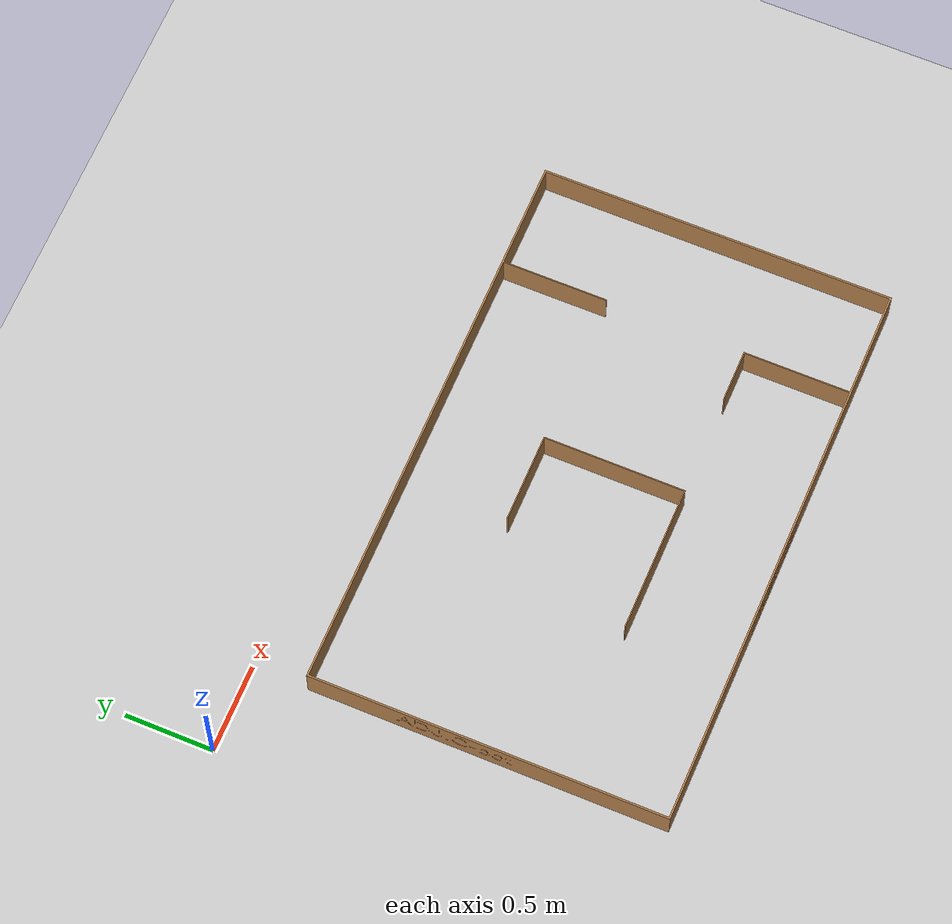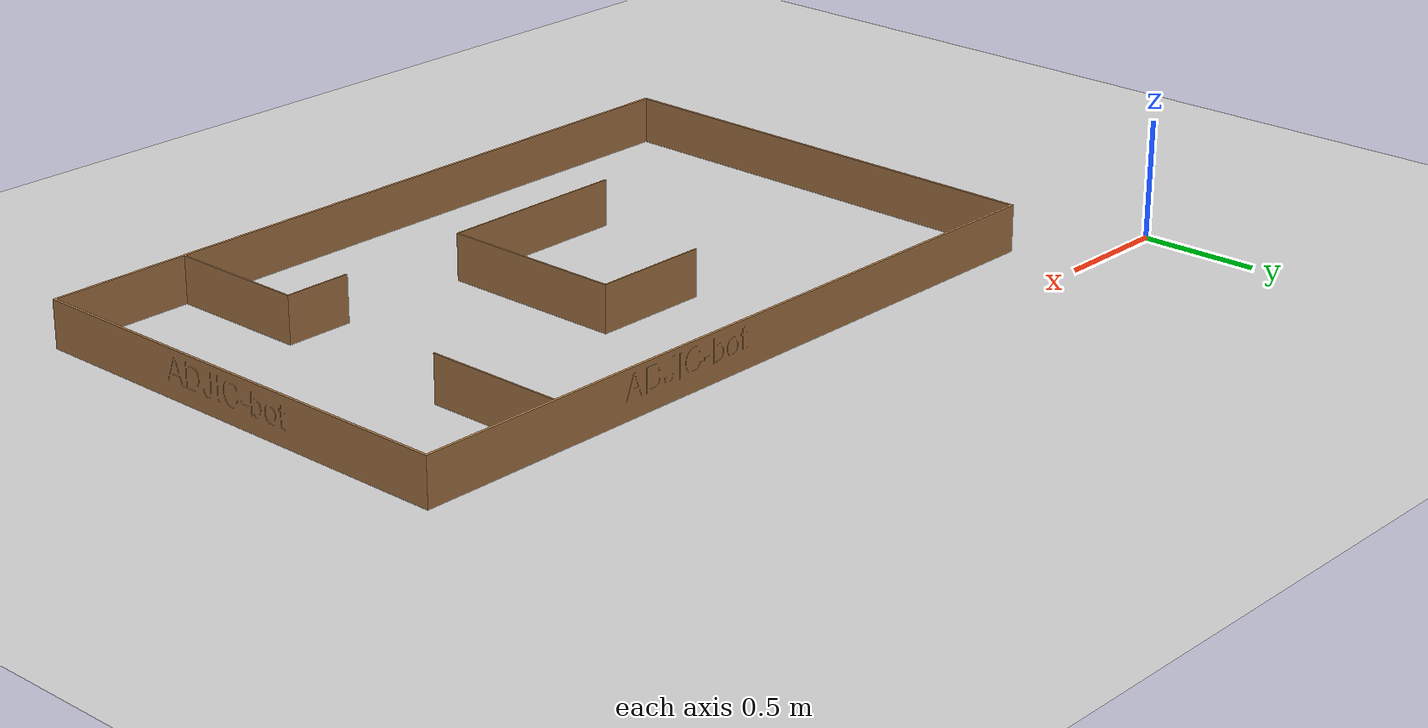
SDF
<sdf version="1.7">
 <world name="default">
  <light name="sun" type="directional">
   <pose>0 0 10 0 -0 0</pose>
   <diffuse>0.8 0.8 0.8 1</diffuse>
   <specular>0.2 0.2 0.2 1</specular>
   <attenuation>
    <range>1000</range>
    <constant>0.9</constant>
    <linear>0.01</linear>
    <quadratic>0.001</quadratic>
   </attenuation>
   <direction>-0.5 0.1 -0.9</direction>
   <spot><inner_angle>0</inner_angle><outer_angle>0</outer_angle><falloff>0</falloff></spot>
  </light>
  <model name="ground_plane">
   <static>1</static>
   <link name="link">
    <collision name="collision">
     <geometry><plane><normal>0 0 1</normal><size>100 100</size></plane></geometry>
     <surface>
      <contact><collide_bitmask>65535</collide_bitmask></contact>
      <friction><ode><mu>100</mu><mu2>50</mu2></ode></friction>
     </surface>
    </collision>
    <visual name="visual">
     <cast_shadows>0</cast_shadows>
     <geometry><plane><normal>0 0 1</normal><size>100 100</size></plane></geometry>
     <material>
      <script><uri>file://media/materials/scripts/gazebo.material</uri><name>Gazebo/Grey</name></script>
     </material>
    </visual>
   </link>
  </model>
  <gravity>0 0 -9.8</gravity>
  <magnetic_field>6e-06 2.3e-05 -4.2e-05</magnetic_field>
  <atmosphere type="adiabatic"/>
  <physics type="ode">
   <max_step_size>0.001</max_step_size>
   <real_time_factor>1</real_time_factor>
   <real_time_update_rate>1000</real_time_update_rate>
  </physics>
  <scene><ambient>0.4 0.4 0.4 1</ambient><background>0.7 0.7 0.7 1</background><shadows>1</shadows></scene>
  <spherical_coordinates>
   <surface_model>EARTH_WGS84</surface_model>
   <latitude_deg>0</latitude_deg>
   <longitude_deg>0</longitude_deg>
   <elevation>0</elevation>
   <heading_deg>0</heading_deg>
  </spherical_coordinates>
  <model name="simulation_map">
   <static>1</static>
   <pose>0.499056 -0.323248 0 0 -0 0</pose>
   <link name="walls">
    <collision name="collision">
     <geometry><mesh><uri>model://map_test/meshes/Mapa_pista_ADJIC v4.dae</uri></mesh></geometry>
     <surface><friction><ode><mu>0.6</mu><mu2>0.6</mu2></ode></friction></surface>
    </collision>
    <visual name="visual">
     <geometry><mesh><uri>model://map_test/meshes/Mapa_pista_ADJIC v4.dae</uri></mesh></geometry>
     <material>
      <script><uri>file://media/materials/scripts/gazebo.material</uri><name>Gazebo/Wood</name></script>
     </material>
     <cast_shadows>0</cast_shadows>
    </visual>
   </link>
  </model>
 </world>
</sdf>
